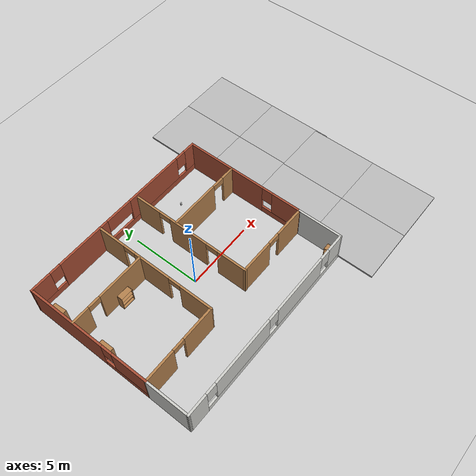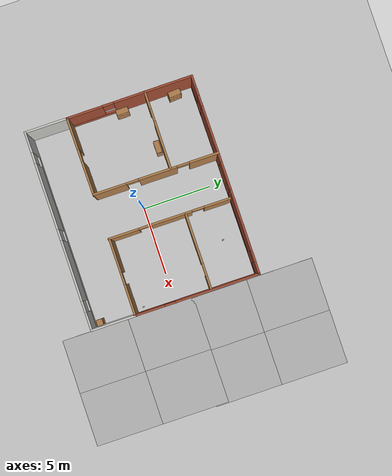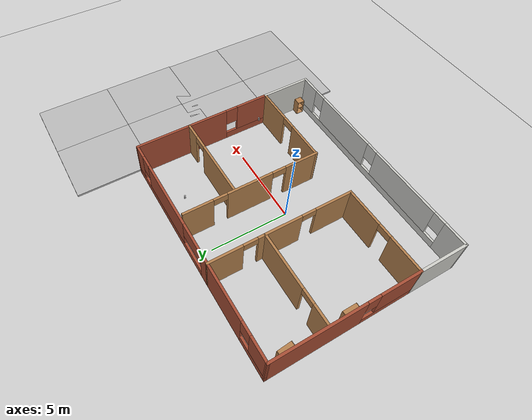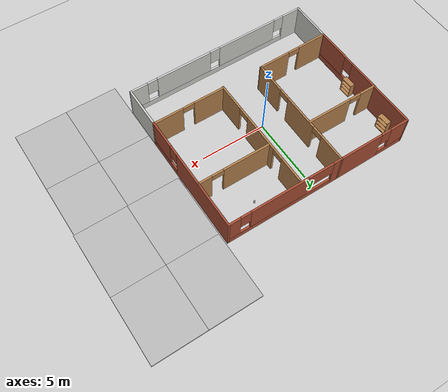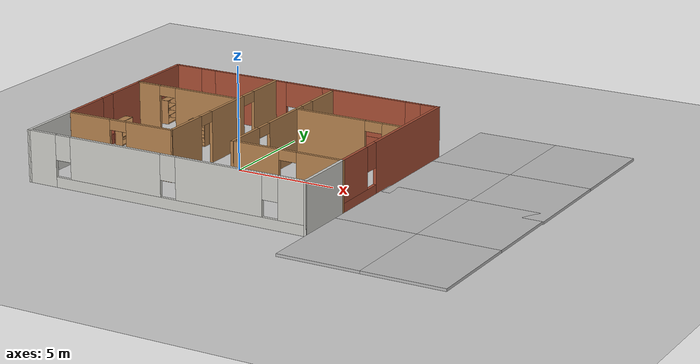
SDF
<sdf version="1.7">
 <world name="default">
  <light name="sun" type="directional">
   <pose>0 0 10 0 -0 0</pose>
   <diffuse>0.8 0.8 0.8 1</diffuse>
   <specular>0.2 0.2 0.2 1</specular>
   <attenuation>
    <range>1000</range>
    <constant>0.9</constant>
    <linear>0.01</linear>
    <quadratic>0.001</quadratic>
   </attenuation>
   <direction>-0.5 0.1 -0.9</direction>
   <spot><inner_angle>0</inner_angle><outer_angle>0</outer_angle><falloff>0</falloff></spot>
  </light>
  <model name="ground_plane">
   <static>1</static>
   <link name="link">
    <collision name="collision">
     <geometry><plane><normal>0 0 1</normal><size>100 100</size></plane></geometry>
     <surface>
      <contact><collide_bitmask>65535</collide_bitmask></contact>
      <friction><ode><mu>100</mu><mu2>50</mu2></ode></friction>
     </surface>
    </collision>
    <visual name="visual">
     <cast_shadows>0</cast_shadows>
     <geometry><plane><normal>0 0 1</normal><size>100 100</size></plane></geometry>
     <material>
      <script><uri>file://media/materials/scripts/gazebo.material</uri><name>Gazebo/Grey</name></script>
     </material>
    </visual>
   </link>
  </model>
  <gravity>0 0 -9.8</gravity>
  <magnetic_field>6e-06 2.3e-05 -4.2e-05</magnetic_field>
  <atmosphere type="adiabatic"/>
  <physics type="ode">
   <max_step_size>0.001</max_step_size>
   <real_time_factor>1</real_time_factor>
   <real_time_update_rate>1000</real_time_update_rate>
  </physics>
  <scene><ambient>0.4 0.4 0.4 1</ambient><background>0.7 0.7 0.7 1</background><shadows>1</shadows></scene>
  <audio><device>default</device></audio>
  <spherical_coordinates>
   <surface_model>EARTH_WGS84</surface_model>
   <latitude_deg>0</latitude_deg>
   <longitude_deg>0</longitude_deg>
   <elevation>0</elevation>
   <heading_deg>0</heading_deg>
  </spherical_coordinates>
  <model name="my_house">
   <pose>-0.15123 0.059453 0 0 -0 0</pose>
   <link name="Wall_0">
    <pose>-7.22486 1.52138 0 0 -0 -1.56493</pose>
    <visual name="Wall_0_Visual_0">
     <pose>-1.72955 0 1.25 0 -0 0</pose>
     <geometry><box><size>5.82578 0.15 2.5</size></box></geometry>
     <material>
      <script><uri>file://media/materials/scripts/gazebo.material</uri><name>Gazebo/Bricks</name></script>
      <ambient>1 1 1 1</ambient>
     </material>
     <meta><layer>0</layer></meta>
    </visual>
    <collision name="Wall_0_Collision_0">
     <geometry><box><size>5.82578 0.15 2.5</size></box></geometry>
     <pose>-1.72955 0 1.25 0 -0 0</pose>
    </collision>
    <visual name="Wall_0_Visual_1">
     <pose>2.91289 0 0.25 0 -0 0</pose>
     <geometry><box><size>3.45909 0.15 0.5</size></box></geometry>
     <material>
      <script><uri>file://media/materials/scripts/gazebo.material</uri><name>Gazebo/Bricks</name></script>
      <ambient>1 1 1 1</ambient>
     </material>
     <meta><layer>0</layer></meta>
    </visual>
    <collision name="Wall_0_Collision_1">
     <geometry><box><size>3.45909 0.15 0.5</size></box></geometry>
     <pose>2.91289 0 0.25 0 -0 0</pose>
    </collision>
    <visual name="Wall_0_Visual_2">
     <pose>3.31289 0 1.5 0 -0 0</pose>
     <geometry><box><size>2.65909 0.15 2</size></box></geometry>
     <material>
      <script><uri>file://media/materials/scripts/gazebo.material</uri><name>Gazebo/Bricks</name></script>
      <ambient>1 1 1 1</ambient>
     </material>
     <meta><layer>0</layer></meta>
    </visual>
    <collision name="Wall_0_Collision_2">
     <geometry><box><size>2.65909 0.15 2</size></box></geometry>
     <pose>3.31289 0 1.5 0 -0 0</pose>
    </collision>
    <visual name="Wall_0_Visual_3">
     <pose>1.58335 0 1.9 0 -0 0</pose>
     <geometry><box><size>0.8 0.15 1.2</size></box></geometry>
     <material>
      <script><uri>file://media/materials/scripts/gazebo.material</uri><name>Gazebo/Bricks</name></script>
      <ambient>1 1 1 1</ambient>
     </material>
     <meta><layer>0</layer></meta>
    </visual>
    <collision name="Wall_0_Collision_3">
     <geometry><box><size>0.8 0.15 1.2</size></box></geometry>
     <pose>1.58335 0 1.9 0 -0 0</pose>
    </collision>
   </link>
   <link name="Wall_1">
    <pose>-4.39808 -3.01539 0 0 -0 0.010925</pose>
    <visual name="Wall_1_Visual_0">
     <pose>-1.70484 0 1.25 0 -0 0</pose>
     <geometry><box><size>2.34033 0.15 2.5</size></box></geometry>
     <material>
      <script><uri>file://media/materials/scripts/gazebo.material</uri><name>Gazebo/Wood</name></script>
      <ambient>1 1 1 1</ambient>
     </material>
     <meta><layer>0</layer></meta>
    </visual>
    <collision name="Wall_1_Collision_0">
     <geometry><box><size>2.34033 0.15 2.5</size></box></geometry>
     <pose>-1.70484 0 1.25 0 -0 0</pose>
    </collision>
    <visual name="Wall_1_Visual_1">
     <pose>1.62016 0 1.25 0 -0 0</pose>
     <geometry><box><size>2.50967 0.15 2.5</size></box></geometry>
     <material>
      <script><uri>file://media/materials/scripts/gazebo.material</uri><name>Gazebo/Wood</name></script>
      <ambient>1 1 1 1</ambient>
     </material>
     <meta><layer>0</layer></meta>
    </visual>
    <collision name="Wall_1_Collision_1">
     <geometry><box><size>2.50967 0.15 2.5</size></box></geometry>
     <pose>1.62016 0 1.25 0 -0 0</pose>
    </collision>
    <visual name="Wall_1_Visual_2">
     <pose>-0.084673 0 2.25 0 -0 0</pose>
     <geometry><box><size>0.9 0.15 0.5</size></box></geometry>
     <material>
      <script><uri>file://media/materials/scripts/gazebo.material</uri><name>Gazebo/Wood</name></script>
      <ambient>1 1 1 1</ambient>
     </material>
     <meta><layer>0</layer></meta>
    </visual>
    <collision name="Wall_1_Collision_2">
     <geometry><box><size>0.9 0.15 0.5</size></box></geometry>
     <pose>-0.084673 0 2.25 0 -0 0</pose>
    </collision>
   </link>
   <link name="Wall_10">
    <pose>1.65192 1.45813 0 0 -0 1.5708</pose>
    <visual name="Wall_10_Visual_0">
     <pose>-3.3626 0 1.25 0 -0 0</pose>
     <geometry><box><size>2.23899 0.15 2.5</size></box></geometry>
     <material>
      <script><uri>file://media/materials/scripts/gazebo.material</uri><name>Gazebo/Wood</name></script>
      <ambient>1 1 1 1</ambient>
     </material>
     <meta><layer>0</layer></meta>
    </visual>
    <collision name="Wall_10_Collision_0">
     <geometry><box><size>2.23899 0.15 2.5</size></box></geometry>
     <pose>-3.3626 0 1.25 0 -0 0</pose>
    </collision>
    <visual name="Wall_10_Visual_1">
     <pose>0.150715 0 1.25 0 -0 0</pose>
     <geometry><box><size>2.98764 0.15 2.5</size></box></geometry>
     <material>
      <script><uri>file://media/materials/scripts/gazebo.material</uri><name>Gazebo/Wood</name></script>
      <ambient>1 1 1 1</ambient>
     </material>
     <meta><layer>0</layer></meta>
    </visual>
    <collision name="Wall_10_Collision_1">
     <geometry><box><size>2.98764 0.15 2.5</size></box></geometry>
     <pose>0.150715 0 1.25 0 -0 0</pose>
    </collision>
    <visual name="Wall_10_Visual_2">
     <pose>3.51331 0 1.25 0 -0 0</pose>
     <geometry><box><size>1.93756 0.15 2.5</size></box></geometry>
     <material>
      <script><uri>file://media/materials/scripts/gazebo.material</uri><name>Gazebo/Wood</name></script>
      <ambient>1 1 1 1</ambient>
     </material>
     <meta><layer>0</layer></meta>
    </visual>
    <collision name="Wall_10_Collision_2">
     <geometry><box><size>1.93756 0.15 2.5</size></box></geometry>
     <pose>3.51331 0 1.25 0 -0 0</pose>
    </collision>
    <visual name="Wall_10_Visual_3">
     <pose>-1.7931 0 2.25 0 -0 0</pose>
     <geometry><box><size>0.9 0.15 0.5</size></box></geometry>
     <material>
      <script><uri>file://media/materials/scripts/gazebo.material</uri><name>Gazebo/Wood</name></script>
      <ambient>1 1 1 1</ambient>
     </material>
     <meta><layer>0</layer></meta>
    </visual>
    <collision name="Wall_10_Collision_3">
     <geometry><box><size>0.9 0.15 0.5</size></box></geometry>
     <pose>-1.7931 0 2.25 0 -0 0</pose>
    </collision>
    <visual name="Wall_10_Visual_4">
     <pose>2.09453 0 2.25 0 -0 0</pose>
     <geometry><box><size>0.9 0.15 0.5</size></box></geometry>
     <material>
      <script><uri>file://media/materials/scripts/gazebo.material</uri><name>Gazebo/Wood</name></script>
      <ambient>1 1 1 1</ambient>
     </material>
     <meta><layer>0</layer></meta>
    </visual>
    <collision name="Wall_10_Collision_4">
     <geometry><box><size>0.9 0.15 0.5</size></box></geometry>
     <pose>2.09453 0 2.25 0 -0 0</pose>
    </collision>
   </link>
   <link name="Wall_12">
    <pose>4.47598 2.62996 0 0 -0 0</pose>
    <visual name="Wall_12_Visual_0">
     <pose>-0.981147 0 1.25 0 -0 0</pose>
     <geometry><box><size>3.66863 0.15 2.5</size></box></geometry>
     <material>
      <script><uri>file://media/materials/scripts/gazebo.material</uri><name>Gazebo/Wood</name></script>
      <ambient>1 1 1 1</ambient>
     </material>
     <meta><layer>0</layer></meta>
    </visual>
    <collision name="Wall_12_Collision_0">
     <geometry><box><size>3.66863 0.15 2.5</size></box></geometry>
     <pose>-0.981147 0 1.25 0 -0 0</pose>
    </collision>
    <visual name="Wall_12_Visual_1">
     <pose>2.28432 0 1.25 0 -0 0</pose>
     <geometry><box><size>1.06229 0.15 2.5</size></box></geometry>
     <material>
      <script><uri>file://media/materials/scripts/gazebo.material</uri><name>Gazebo/Wood</name></script>
      <ambient>1 1 1 1</ambient>
     </material>
     <meta><layer>0</layer></meta>
    </visual>
    <collision name="Wall_12_Collision_1">
     <geometry><box><size>1.06229 0.15 2.5</size></box></geometry>
     <pose>2.28432 0 1.25 0 -0 0</pose>
    </collision>
    <visual name="Wall_12_Visual_2">
     <pose>1.30317 0 2.25 0 -0 0</pose>
     <geometry><box><size>0.9 0.15 0.5</size></box></geometry>
     <material>
      <script><uri>file://media/materials/scripts/gazebo.material</uri><name>Gazebo/Wood</name></script>
      <ambient>1 1 1 1</ambient>
     </material>
     <meta><layer>0</layer></meta>
    </visual>
    <collision name="Wall_12_Collision_2">
     <geometry><box><size>0.9 0.15 0.5</size></box></geometry>
     <pose>1.30317 0 2.25 0 -0 0</pose>
    </collision>
   </link>
   <link name="Wall_14">
    <collision name="Wall_14_Collision">
     <geometry><box><size>3.25 0.15 2.5</size></box></geometry>
     <pose>0 0 1.25 0 -0 0</pose>
    </collision>
    <visual name="Wall_14_Visual">
     <pose>0 0 1.25 0 -0 0</pose>
     <geometry><box><size>3.25 0.15 2.5</size></box></geometry>
     <material>
      <script><uri>file://media/materials/scripts/gazebo.material</uri><name>Gazebo/CeilingTiled</name></script>
      <ambient>1 1 1 1</ambient>
     </material>
     <meta><layer>0</layer></meta>
    </visual>
    <pose>-7.19808 -4.56539 0 0 -0 -1.5708</pose>
   </link>
   <link name="Wall_15">
    <pose>0.026917 -6.1001 0 0 -0 0.002117</pose>
    <visual name="Wall_15_Visual_0">
     <pose>-6.52626 0 1.25 0 -0 0</pose>
     <geometry><box><size>1.54752 0.15 2.5</size></box></geometry>
     <material>
      <script><uri>file://media/materials/scripts/gazebo.material</uri><name>Gazebo/CeilingTiled</name></script>
      <ambient>1 1 1 1</ambient>
     </material>
     <meta><layer>0</layer></meta>
    </visual>
    <collision name="Wall_15_Collision_0">
     <geometry><box><size>1.54752 0.15 2.5</size></box></geometry>
     <pose>-6.52626 0 1.25 0 -0 0</pose>
    </collision>
    <visual name="Wall_15_Visual_1">
     <pose>0.77376 0 0.25 0 -0 0</pose>
     <geometry><box><size>13.0525 0.15 0.5</size></box></geometry>
     <material>
      <script><uri>file://media/materials/scripts/gazebo.material</uri><name>Gazebo/CeilingTiled</name></script>
      <ambient>1 1 1 1</ambient>
     </material>
     <meta><layer>0</layer></meta>
    </visual>
    <collision name="Wall_15_Collision_1">
     <geometry><box><size>13.0525 0.15 0.5</size></box></geometry>
     <pose>0.77376 0 0.25 0 -0 0</pose>
    </collision>
    <visual name="Wall_15_Visual_2">
     <pose>-2.53817 0 1.5 0 -0 0</pose>
     <geometry><box><size>4.82865 0.15 2</size></box></geometry>
     <material>
      <script><uri>file://media/materials/scripts/gazebo.material</uri><name>Gazebo/CeilingTiled</name></script>
      <ambient>1 1 1 1</ambient>
     </material>
     <meta><layer>0</layer></meta>
    </visual>
    <collision name="Wall_15_Collision_2">
     <geometry><box><size>4.82865 0.15 2</size></box></geometry>
     <pose>-2.53817 0 1.5 0 -0 0</pose>
    </collision>
    <visual name="Wall_15_Visual_3">
     <pose>2.89168 0 1.5 0 -0 0</pose>
     <geometry><box><size>4.43105 0.15 2</size></box></geometry>
     <material>
      <script><uri>file://media/materials/scripts/gazebo.material</uri><name>Gazebo/CeilingTiled</name></script>
      <ambient>1 1 1 1</ambient>
     </material>
     <meta><layer>0</layer></meta>
    </visual>
    <collision name="Wall_15_Collision_3">
     <geometry><box><size>4.43105 0.15 2</size></box></geometry>
     <pose>2.89168 0 1.5 0 -0 0</pose>
    </collision>
    <visual name="Wall_15_Visual_4">
     <pose>6.60361 0 1.5 0 -0 0</pose>
     <geometry><box><size>1.39281 0.15 2</size></box></geometry>
     <material>
      <script><uri>file://media/materials/scripts/gazebo.material</uri><name>Gazebo/CeilingTiled</name></script>
      <ambient>1 1 1 1</ambient>
     </material>
     <meta><layer>0</layer></meta>
    </visual>
    <collision name="Wall_15_Collision_4">
     <geometry><box><size>1.39281 0.15 2</size></box></geometry>
     <pose>6.60361 0 1.5 0 -0 0</pose>
    </collision>
    <visual name="Wall_15_Visual_5">
     <pose>-5.3525 0 1.9 0 -0 0</pose>
     <geometry><box><size>0.8 0.15 1.2</size></box></geometry>
     <material>
      <script><uri>file://media/materials/scripts/gazebo.material</uri><name>Gazebo/CeilingTiled</name></script>
      <ambient>1 1 1 1</ambient>
     </material>
     <meta><layer>0</layer></meta>
    </visual>
    <collision name="Wall_15_Collision_5">
     <geometry><box><size>0.8 0.15 1.2</size></box></geometry>
     <pose>-5.3525 0 1.9 0 -0 0</pose>
    </collision>
    <visual name="Wall_15_Visual_6">
     <pose>0.276159 0 1.9 0 -0 0</pose>
     <geometry><box><size>0.8 0.15 1.2</size></box></geometry>
     <material>
      <script><uri>file://media/materials/scripts/gazebo.material</uri><name>Gazebo/CeilingTiled</name></script>
      <ambient>1 1 1 1</ambient>
     </material>
     <meta><layer>0</layer></meta>
    </visual>
    <collision name="Wall_15_Collision_6">
     <geometry><box><size>0.8 0.15 1.2</size></box></geometry>
     <pose>0.276159 0 1.9 0 -0 0</pose>
    </collision>
    <visual name="Wall_15_Visual_7">
     <pose>5.50721 0 1.9 0 -0 0</pose>
     <geometry><box><size>0.8 0.15 1.2</size></box></geometry>
     <material>
      <script><uri>file://media/materials/scripts/gazebo.material</uri><name>Gazebo/CeilingTiled</name></script>
      <ambient>1 1 1 1</ambient>
     </material>
     <meta><layer>0</layer></meta>
    </visual>
    <collision name="Wall_15_Collision_7">
     <geometry><box><size>0.8 0.15 1.2</size></box></geometry>
     <pose>5.50721 0 1.9 0 -0 0</pose>
    </collision>
   </link>
   <link name="Wall_16">
    <collision name="Wall_16_Collision">
     <geometry><box><size>3.28602 0.15 2.5</size></box></geometry>
     <pose>0 0 1.25 0 -0 0</pose>
    </collision>
    <visual name="Wall_16_Visual">
     <pose>0 0 1.25 0 -0 0</pose>
     <geometry><box><size>3.28602 0.15 2.5</size></box></geometry>
     <material>
      <script><uri>file://media/materials/scripts/gazebo.material</uri><name>Gazebo/CeilingTiled</name></script>
      <ambient>1 1 1 1</ambient>
     </material>
     <meta><layer>0</layer></meta>
    </visual>
    <pose>7.25192 -4.51687 0 0 -0 1.5708</pose>
   </link>
   <link name="Wall_2">
    <pose>-1.59808 1.5652 0 0 -0 1.5708</pose>
    <visual name="Wall_2_Visual_0">
     <pose>-3.39449 0 1.25 0 -0 0</pose>
     <geometry><box><size>2.46101 0.15 2.5</size></box></geometry>
     <material>
      <script><uri>file://media/materials/scripts/gazebo.material</uri><name>Gazebo/Wood</name></script>
      <ambient>1 1 1 1</ambient>
     </material>
     <meta><layer>0</layer></meta>
    </visual>
    <collision name="Wall_2_Collision_0">
     <geometry><box><size>2.46101 0.15 2.5</size></box></geometry>
     <pose>-3.39449 0 1.25 0 -0 0</pose>
    </collision>
    <visual name="Wall_2_Visual_1">
     <pose>0.136462 0 1.25 0 -0 0</pose>
     <geometry><box><size>2.8009 0.15 2.5</size></box></geometry>
     <material>
      <script><uri>file://media/materials/scripts/gazebo.material</uri><name>Gazebo/Wood</name></script>
      <ambient>1 1 1 1</ambient>
     </material>
     <meta><layer>0</layer></meta>
    </visual>
    <collision name="Wall_2_Collision_1">
     <geometry><box><size>2.8009 0.15 2.5</size></box></geometry>
     <pose>0.136462 0 1.25 0 -0 0</pose>
    </collision>
    <visual name="Wall_2_Visual_2">
     <pose>3.53096 0 1.25 0 -0 0</pose>
     <geometry><box><size>2.18809 0.15 2.5</size></box></geometry>
     <material>
      <script><uri>file://media/materials/scripts/gazebo.material</uri><name>Gazebo/Wood</name></script>
      <ambient>1 1 1 1</ambient>
     </material>
     <meta><layer>0</layer></meta>
    </visual>
    <collision name="Wall_2_Collision_2">
     <geometry><box><size>2.18809 0.15 2.5</size></box></geometry>
     <pose>3.53096 0 1.25 0 -0 0</pose>
    </collision>
    <visual name="Wall_2_Visual_3">
     <pose>-1.71399 0 2.25 0 -0 0</pose>
     <geometry><box><size>0.9 0.15 0.5</size></box></geometry>
     <material>
      <script><uri>file://media/materials/scripts/gazebo.material</uri><name>Gazebo/Wood</name></script>
      <ambient>1 1 1 1</ambient>
     </material>
     <meta><layer>0</layer></meta>
    </visual>
    <collision name="Wall_2_Collision_3">
     <geometry><box><size>0.9 0.15 0.5</size></box></geometry>
     <pose>-1.71399 0 2.25 0 -0 0</pose>
    </collision>
    <visual name="Wall_2_Visual_4">
     <pose>1.98691 0 2.25 0 -0 0</pose>
     <geometry><box><size>0.9 0.15 0.5</size></box></geometry>
     <material>
      <script><uri>file://media/materials/scripts/gazebo.material</uri><name>Gazebo/Wood</name></script>
      <ambient>1 1 1 1</ambient>
     </material>
     <meta><layer>0</layer></meta>
    </visual>
    <collision name="Wall_2_Collision_4">
     <geometry><box><size>0.9 0.15 0.5</size></box></geometry>
     <pose>1.98691 0 2.25 0 -0 0</pose>
    </collision>
   </link>
   <link name="Wall_3">
    <pose>-4.42486 6.10197 0 0 -0 -3.13691</pose>
    <visual name="Wall_3_Visual_0">
     <pose>-1.155 0 1.25 0 -0 0</pose>
     <geometry><box><size>3.49361 0.15 2.5</size></box></geometry>
     <material>
      <script><uri>file://media/materials/scripts/gazebo.material</uri><name>Gazebo/Bricks</name></script>
      <ambient>1 1 1 1</ambient>
     </material>
     <meta><layer>0</layer></meta>
    </visual>
    <collision name="Wall_3_Collision_0">
     <geometry><box><size>3.49361 0.15 2.5</size></box></geometry>
     <pose>-1.155 0 1.25 0 -0 0</pose>
    </collision>
    <visual name="Wall_3_Visual_1">
     <pose>1.74681 0 0.25 0 -0 0</pose>
     <geometry><box><size>2.31 0.15 0.5</size></box></geometry>
     <material>
      <script><uri>file://media/materials/scripts/gazebo.material</uri><name>Gazebo/Bricks</name></script>
      <ambient>1 1 1 1</ambient>
     </material>
     <meta><layer>0</layer></meta>
    </visual>
    <collision name="Wall_3_Collision_1">
     <geometry><box><size>2.31 0.15 0.5</size></box></geometry>
     <pose>1.74681 0 0.25 0 -0 0</pose>
    </collision>
    <visual name="Wall_3_Visual_2">
     <pose>2.14681 0 1.5 0 -0 0</pose>
     <geometry><box><size>1.51 0.15 2</size></box></geometry>
     <material>
      <script><uri>file://media/materials/scripts/gazebo.material</uri><name>Gazebo/Bricks</name></script>
      <ambient>1 1 1 1</ambient>
     </material>
     <meta><layer>0</layer></meta>
    </visual>
    <collision name="Wall_3_Collision_2">
     <geometry><box><size>1.51 0.15 2</size></box></geometry>
     <pose>2.14681 0 1.5 0 -0 0</pose>
    </collision>
    <visual name="Wall_3_Visual_3">
     <pose>0.991805 0 1.9 0 -0 0</pose>
     <geometry><box><size>0.8 0.15 1.2</size></box></geometry>
     <material>
      <script><uri>file://media/materials/scripts/gazebo.material</uri><name>Gazebo/Bricks</name></script>
      <ambient>1 1 1 1</ambient>
     </material>
     <meta><layer>0</layer></meta>
    </visual>
    <collision name="Wall_3_Collision_3">
     <geometry><box><size>0.8 0.15 1.2</size></box></geometry>
     <pose>0.991805 0 1.9 0 -0 0</pose>
    </collision>
   </link>
   <link name="Wall_5">
    <pose>-4.4182 2.647 0 0 -0 0</pose>
    <visual name="Wall_5_Visual_0">
     <pose>-2.22036 0 1.25 0 -0 0</pose>
     <geometry><box><size>1.30928 0.15 2.5</size></box></geometry>
     <material>
      <script><uri>file://media/materials/scripts/gazebo.material</uri><name>Gazebo/Wood</name></script>
      <ambient>1 1 1 1</ambient>
     </material>
     <meta><layer>0</layer></meta>
    </visual>
    <collision name="Wall_5_Collision_0">
     <geometry><box><size>1.30928 0.15 2.5</size></box></geometry>
     <pose>-2.22036 0 1.25 0 -0 0</pose>
    </collision>
    <visual name="Wall_5_Visual_1">
     <pose>1.10464 0 1.25 0 -0 0</pose>
     <geometry><box><size>3.54072 0.15 2.5</size></box></geometry>
     <material>
      <script><uri>file://media/materials/scripts/gazebo.material</uri><name>Gazebo/Wood</name></script>
      <ambient>1 1 1 1</ambient>
     </material>
     <meta><layer>0</layer></meta>
    </visual>
    <collision name="Wall_5_Collision_1">
     <geometry><box><size>3.54072 0.15 2.5</size></box></geometry>
     <pose>1.10464 0 1.25 0 -0 0</pose>
    </collision>
    <visual name="Wall_5_Visual_2">
     <pose>-1.11572 0 2.25 0 -0 0</pose>
     <geometry><box><size>0.9 0.15 0.5</size></box></geometry>
     <material>
      <script><uri>file://media/materials/scripts/gazebo.material</uri><name>Gazebo/Wood</name></script>
      <ambient>1 1 1 1</ambient>
     </material>
     <meta><layer>0</layer></meta>
    </visual>
    <collision name="Wall_5_Collision_2">
     <geometry><box><size>0.9 0.15 0.5</size></box></geometry>
     <pose>-1.11572 0 2.25 0 -0 0</pose>
    </collision>
   </link>
   <link name="Wall_7">
    <pose>2.82692 6.1152 0 0 -0 0</pose>
    <visual name="Wall_7_Visual_0">
     <pose>-4.1402 0 1.25 0 -0 0</pose>
     <geometry><box><size>0.719608 0.15 2.5</size></box></geometry>
     <material>
      <script><uri>file://media/materials/scripts/gazebo.material</uri><name>Gazebo/Bricks</name></script>
      <ambient>1 1 1 1</ambient>
     </material>
     <meta><layer>0</layer></meta>
    </visual>
    <collision name="Wall_7_Collision_0">
     <geometry><box><size>0.719608 0.15 2.5</size></box></geometry>
     <pose>-4.1402 0 1.25 0 -0 0</pose>
    </collision>
    <visual name="Wall_7_Visual_1">
     <pose>0.359804 0 0.25 0 -0 0</pose>
     <geometry><box><size>8.28039 0.15 0.5</size></box></geometry>
     <material>
      <script><uri>file://media/materials/scripts/gazebo.material</uri><name>Gazebo/Bricks</name></script>
      <ambient>1 1 1 1</ambient>
     </material>
     <meta><layer>0</layer></meta>
    </visual>
    <collision name="Wall_7_Collision_1">
     <geometry><box><size>8.28039 0.15 0.5</size></box></geometry>
     <pose>0.359804 0 0.25 0 -0 0</pose>
    </collision>
    <visual name="Wall_7_Visual_2">
     <pose>0.489272 0 1.5 0 -0 0</pose>
     <geometry><box><size>4.49211 0.15 2</size></box></geometry>
     <material>
      <script><uri>file://media/materials/scripts/gazebo.material</uri><name>Gazebo/Bricks</name></script>
      <ambient>1 1 1 1</ambient>
     </material>
     <meta><layer>0</layer></meta>
    </visual>
    <collision name="Wall_7_Collision_2">
     <geometry><box><size>4.49211 0.15 2</size></box></geometry>
     <pose>0.489272 0 1.5 0 -0 0</pose>
    </collision>
    <visual name="Wall_7_Visual_3">
     <pose>4.01766 0 1.5 0 -0 0</pose>
     <geometry><box><size>0.964674 0.15 2</size></box></geometry>
     <material>
      <script><uri>file://media/materials/scripts/gazebo.material</uri><name>Gazebo/Bricks</name></script>
      <ambient>1 1 1 1</ambient>
     </material>
     <meta><layer>0</layer></meta>
    </visual>
    <collision name="Wall_7_Collision_3">
     <geometry><box><size>0.964674 0.15 2</size></box></geometry>
     <pose>4.01766 0 1.5 0 -0 0</pose>
    </collision>
    <visual name="Wall_7_Visual_4">
     <pose>-2.76859 0 1.9 0 -0 0</pose>
     <geometry><box><size>2.02361 0.15 1.2</size></box></geometry>
     <material>
      <script><uri>file://media/materials/scripts/gazebo.material</uri><name>Gazebo/Bricks</name></script>
      <ambient>1 1 1 1</ambient>
     </material>
     <meta><layer>0</layer></meta>
    </visual>
    <collision name="Wall_7_Collision_4">
     <geometry><box><size>2.02361 0.15 1.2</size></box></geometry>
     <pose>-2.76859 0 1.9 0 -0 0</pose>
    </collision>
    <visual name="Wall_7_Visual_5">
     <pose>3.13533 0 1.9 0 -0 0</pose>
     <geometry><box><size>0.8 0.15 1.2</size></box></geometry>
     <material>
      <script><uri>file://media/materials/scripts/gazebo.material</uri><name>Gazebo/Bricks</name></script>
      <ambient>1 1 1 1</ambient>
     </material>
     <meta><layer>0</layer></meta>
    </visual>
    <collision name="Wall_7_Collision_5">
     <geometry><box><size>0.8 0.15 1.2</size></box></geometry>
     <pose>3.13533 0 1.9 0 -0 0</pose>
    </collision>
   </link>
   <link name="Wall_8">
    <pose>7.25192 1.58313 0 0 -0 -1.5708</pose>
    <visual name="Wall_8_Visual_0">
     <pose>-1.52793 0 1.25 0 -0 0</pose>
     <geometry><box><size>6.15832 0.15 2.5</size></box></geometry>
     <material>
      <script><uri>file://media/materials/scripts/gazebo.material</uri><name>Gazebo/Bricks</name></script>
      <ambient>1 1 1 1</ambient>
     </material>
     <meta><layer>0</layer></meta>
    </visual>
    <collision name="Wall_8_Collision_0">
     <geometry><box><size>6.15832 0.15 2.5</size></box></geometry>
     <pose>-1.52793 0 1.25 0 -0 0</pose>
    </collision>
    <visual name="Wall_8_Visual_1">
     <pose>3.07916 0 0.25 0 -0 0</pose>
     <geometry><box><size>3.05586 0.15 0.5</size></box></geometry>
     <material>
      <script><uri>file://media/materials/scripts/gazebo.material</uri><name>Gazebo/Bricks</name></script>
      <ambient>1 1 1 1</ambient>
     </material>
     <meta><layer>0</layer></meta>
    </visual>
    <collision name="Wall_8_Collision_1">
     <geometry><box><size>3.05586 0.15 0.5</size></box></geometry>
     <pose>3.07916 0 0.25 0 -0 0</pose>
    </collision>
    <visual name="Wall_8_Visual_2">
     <pose>3.47916 0 1.5 0 -0 0</pose>
     <geometry><box><size>2.25586 0.15 2</size></box></geometry>
     <material>
      <script><uri>file://media/materials/scripts/gazebo.material</uri><name>Gazebo/Bricks</name></script>
      <ambient>1 1 1 1</ambient>
     </material>
     <meta><layer>0</layer></meta>
    </visual>
    <collision name="Wall_8_Collision_2">
     <geometry><box><size>2.25586 0.15 2</size></box></geometry>
     <pose>3.47916 0 1.5 0 -0 0</pose>
    </collision>
    <visual name="Wall_8_Visual_3">
     <pose>1.95123 0 1.9 0 -0 0</pose>
     <geometry><box><size>0.8 0.15 1.2</size></box></geometry>
     <material>
      <script><uri>file://media/materials/scripts/gazebo.material</uri><name>Gazebo/Bricks</name></script>
      <ambient>1 1 1 1</ambient>
     </material>
     <meta><layer>0</layer></meta>
    </visual>
    <collision name="Wall_8_Collision_3">
     <geometry><box><size>0.8 0.15 1.2</size></box></geometry>
     <pose>1.95123 0 1.9 0 -0 0</pose>
    </collision>
   </link>
   <link name="Wall_9">
    <pose>4.45192 -2.91834 0 0 -0 3.14159</pose>
    <visual name="Wall_9_Visual_0">
     <pose>-1.69857 0 1.25 0 -0 0</pose>
     <geometry><box><size>2.35287 0.15 2.5</size></box></geometry>
     <material>
      <script><uri>file://media/materials/scripts/gazebo.material</uri><name>Gazebo/Wood</name></script>
      <ambient>1 1 1 1</ambient>
     </material>
     <meta><layer>0</layer></meta>
    </visual>
    <collision name="Wall_9_Collision_0">
     <geometry><box><size>2.35287 0.15 2.5</size></box></geometry>
     <pose>-1.69857 0 1.25 0 -0 0</pose>
    </collision>
    <visual name="Wall_9_Visual_1">
     <pose>1.62643 0 1.25 0 -0 0</pose>
     <geometry><box><size>2.49713 0.15 2.5</size></box></geometry>
     <material>
      <script><uri>file://media/materials/scripts/gazebo.material</uri><name>Gazebo/Wood</name></script>
      <ambient>1 1 1 1</ambient>
     </material>
     <meta><layer>0</layer></meta>
    </visual>
    <collision name="Wall_9_Collision_1">
     <geometry><box><size>2.49713 0.15 2.5</size></box></geometry>
     <pose>1.62643 0 1.25 0 -0 0</pose>
    </collision>
    <visual name="Wall_9_Visual_2">
     <pose>-0.072133 0 2.25 0 -0 0</pose>
     <geometry><box><size>0.9 0.15 0.5</size></box></geometry>
     <material>
      <script><uri>file://media/materials/scripts/gazebo.material</uri><name>Gazebo/Wood</name></script>
      <ambient>1 1 1 1</ambient>
     </material>
     <meta><layer>0</layer></meta>
    </visual>
    <collision name="Wall_9_Collision_2">
     <geometry><box><size>0.9 0.15 0.5</size></box></geometry>
     <pose>-0.072133 0 2.25 0 -0 0</pose>
    </collision>
   </link>
   <static>1</static>
  </model>
  <model name="bookshelf">
   <static>1</static>
   <link name="link">
    <inertial><mass>1</mass></inertial>
    <collision name="back">
     <pose>0 0.005 0.6 0 -0 0</pose>
     <geometry><box><size>0.9 0.01 1.2</size></box></geometry>
    </collision>
    <visual name="visual1">
     <pose>0 0.005 0.6 0 -0 0</pose>
     <geometry><box><size>0.9 0.01 1.2</size></box></geometry>
     <material>
      <script><uri>file://media/materials/scripts/gazebo.material</uri><name>Gazebo/Wood</name></script>
     </material>
    </visual>
    <collision name="left_side">
     <pose>0.45 -0.195 0.6 0 -0 0</pose>
     <geometry><box><size>0.02 0.4 1.2</size></box></geometry>
    </collision>
    <visual name="visual2">
     <pose>0.45 -0.195 0.6 0 -0 0</pose>
     <geometry><box><size>0.02 0.4 1.2</size></box></geometry>
     <material>
      <script><uri>file://media/materials/scripts/gazebo.material</uri><name>Gazebo/Wood</name></script>
     </material>
    </visual>
    <collision name="right_side">
     <pose>-0.45 -0.195 0.6 0 -0 0</pose>
     <geometry><box><size>0.02 0.4 1.2</size></box></geometry>
    </collision>
    <visual name="visual3">
     <pose>-0.45 -0.195 0.6 0 -0 0</pose>
     <geometry><box><size>0.02 0.4 1.2</size></box></geometry>
     <material>
      <script><uri>file://media/materials/scripts/gazebo.material</uri><name>Gazebo/Wood</name></script>
     </material>
    </visual>
    <collision name="bottom">
     <pose>0 -0.195 0.03 0 -0 0</pose>
     <geometry><box><size>0.88 0.4 0.06</size></box></geometry>
    </collision>
    <visual name="visual4">
     <pose>0 -0.195 0.03 0 -0 0</pose>
     <geometry><box><size>0.88 0.4 0.06</size></box></geometry>
     <material>
      <script><uri>file://media/materials/scripts/gazebo.material</uri><name>Gazebo/Wood</name></script>
     </material>
    </visual>
    <collision name="top">
     <pose>0 -0.195 1.19 0 -0 0</pose>
     <geometry><box><size>0.88 0.4 0.02</size></box></geometry>
    </collision>
    <visual name="visual5">
     <pose>0 -0.195 1.19 0 -0 0</pose>
     <geometry><box><size>0.88 0.4 0.02</size></box></geometry>
     <material>
      <script><uri>file://media/materials/scripts/gazebo.material</uri><name>Gazebo/Wood</name></script>
     </material>
    </visual>
    <collision name="low_shelf">
     <pose>0 -0.195 0.43 0 -0 0</pose>
     <geometry><box><size>0.88 0.4 0.02</size></box></geometry>
    </collision>
    <visual name="visual6">
     <pose>0 -0.195 0.43 0 -0 0</pose>
     <geometry><box><size>0.88 0.4 0.02</size></box></geometry>
     <material>
      <script><uri>file://media/materials/scripts/gazebo.material</uri><name>Gazebo/Wood</name></script>
     </material>
    </visual>
    <collision name="high_shelf">
     <pose>0 -0.195 0.8 0 -0 0</pose>
     <geometry><box><size>0.88 0.4 0.02</size></box></geometry>
    </collision>
    <visual name="visual7">
     <pose>0 -0.195 0.8 0 -0 0</pose>
     <geometry><box><size>0.88 0.4 0.02</size></box></geometry>
     <material>
      <script><uri>file://media/materials/scripts/gazebo.material</uri><name>Gazebo/Wood</name></script>
     </material>
    </visual>
   </link>
   <pose>-3.73951 2.54538 0 0 -0 0</pose>
  </model>
  <model name="bookshelf_0">
   <static>1</static>
   <link name="link">
    <inertial><mass>1</mass></inertial>
    <collision name="back">
     <pose>0 0.005 0.6 0 -0 0</pose>
     <geometry><box><size>0.9 0.01 1.2</size></box></geometry>
    </collision>
    <visual name="visual1">
     <pose>0 0.005 0.6 0 -0 0</pose>
     <geometry><box><size>0.9 0.01 1.2</size></box></geometry>
     <material>
      <script><uri>file://media/materials/scripts/gazebo.material</uri><name>Gazebo/Wood</name></script>
     </material>
    </visual>
    <collision name="left_side">
     <pose>0.45 -0.195 0.6 0 -0 0</pose>
     <geometry><box><size>0.02 0.4 1.2</size></box></geometry>
    </collision>
    <visual name="visual2">
     <pose>0.45 -0.195 0.6 0 -0 0</pose>
     <geometry><box><size>0.02 0.4 1.2</size></box></geometry>
     <material>
      <script><uri>file://media/materials/scripts/gazebo.material</uri><name>Gazebo/Wood</name></script>
     </material>
    </visual>
    <collision name="right_side">
     <pose>-0.45 -0.195 0.6 0 -0 0</pose>
     <geometry><box><size>0.02 0.4 1.2</size></box></geometry>
    </collision>
    <visual name="visual3">
     <pose>-0.45 -0.195 0.6 0 -0 0</pose>
     <geometry><box><size>0.02 0.4 1.2</size></box></geometry>
     <material>
      <script><uri>file://media/materials/scripts/gazebo.material</uri><name>Gazebo/Wood</name></script>
     </material>
    </visual>
    <collision name="bottom">
     <pose>0 -0.195 0.03 0 -0 0</pose>
     <geometry><box><size>0.88 0.4 0.06</size></box></geometry>
    </collision>
    <visual name="visual4">
     <pose>0 -0.195 0.03 0 -0 0</pose>
     <geometry><box><size>0.88 0.4 0.06</size></box></geometry>
     <material>
      <script><uri>file://media/materials/scripts/gazebo.material</uri><name>Gazebo/Wood</name></script>
     </material>
    </visual>
    <collision name="top">
     <pose>0 -0.195 1.19 0 -0 0</pose>
     <geometry><box><size>0.88 0.4 0.02</size></box></geometry>
    </collision>
    <visual name="visual5">
     <pose>0 -0.195 1.19 0 -0 0</pose>
     <geometry><box><size>0.88 0.4 0.02</size></box></geometry>
     <material>
      <script><uri>file://media/materials/scripts/gazebo.material</uri><name>Gazebo/Wood</name></script>
     </material>
    </visual>
    <collision name="low_shelf">
     <pose>0 -0.195 0.43 0 -0 0</pose>
     <geometry><box><size>0.88 0.4 0.02</size></box></geometry>
    </collision>
    <visual name="visual6">
     <pose>0 -0.195 0.43 0 -0 0</pose>
     <geometry><box><size>0.88 0.4 0.02</size></box></geometry>
     <material>
      <script><uri>file://media/materials/scripts/gazebo.material</uri><name>Gazebo/Wood</name></script>
     </material>
    </visual>
    <collision name="high_shelf">
     <pose>0 -0.195 0.8 0 -0 0</pose>
     <geometry><box><size>0.88 0.4 0.02</size></box></geometry>
    </collision>
    <visual name="visual7">
     <pose>0 -0.195 0.8 0 -0 0</pose>
     <geometry><box><size>0.88 0.4 0.02</size></box></geometry>
     <material>
      <script><uri>file://media/materials/scripts/gazebo.material</uri><name>Gazebo/Wood</name></script>
     </material>
    </visual>
   </link>
   <pose>-7.16459 0.769554 0 0 -0 1.586</pose>
  </model>
  <model name="beer">
   <link name="link">
    <pose>0 0 0.115 0 -0 0</pose>
    <inertial>
     <mass>0.39</mass>
     <inertia><ixx>0.00058</ixx><ixy>0</ixy><ixz>0</ixz><iyy>0.00058</iyy><iyz>0</iyz><izz>0.00019</izz></inertia>
    </inertial>
    <collision name="collision">
     <geometry><cylinder><radius>0.055</radius><length>0.23</length></cylinder></geometry>
    </collision>
    <visual name="visual">
     <geometry><cylinder><radius>0.055</radius><length>0.23</length></cylinder></geometry>
     <material>
      <script>
       <uri>model://beer/materials/scripts</uri>
       <uri>model://beer/materials/textures</uri>
       <name>Beer/Diffuse</name>
      </script>
     </material>
    </visual>
   </link>
   <pose>6.7374 -2.23829 0.774993 5e-05 0 0.010659</pose>
  </model>
  <model name="cabinet">
   <static>1</static>
   <link name="cabinet_bottom_plate">
    <inertial>
     <pose>0 0 -1 0 -0 0</pose>
     <inertia><ixx>2.05</ixx><ixy>0</ixy><ixz>0</ixz><iyy>2.05</iyy><iyz>0</iyz><izz>2.05</izz></inertia>
     <mass>25</mass>
    </inertial>
    <collision name="cabinet_bottom_plate_geom">
     <pose>0 0 0.01 0 -0 0</pose>
     <geometry><box><size>0.45 0.45 0.02</size></box></geometry>
    </collision>
    <visual name="cabinet_bottom_plate_geom_visual">
     <pose>0 0 0.01 0 -0 0</pose>
     <geometry><box><size>0.45 0.45 0.02</size></box></geometry>
     <material>
      <script><uri>file://media/materials/scripts/gazebo.material</uri><name>Gazebo/Wood</name></script>
     </material>
    </visual>
    <collision name="cabinet_bottom_plate_geom_cabinet_back_plate">
     <pose>0.235 0 0.51 0 -0 0</pose>
     <geometry><box><size>0.02 0.45 1.02</size></box></geometry>
    </collision>
    <visual name="cabinet_bottom_plate_geom_cabinet_back_plate_visual">
     <pose>0.235 0 0.51 0 -0 0</pose>
     <geometry><box><size>0.02 0.45 1.02</size></box></geometry>
     <material>
      <script><uri>file://media/materials/scripts/gazebo.material</uri><name>Gazebo/Wood</name></script>
     </material>
    </visual>
    <collision name="cabinet_bottom_plate_geom_cabinet_left_plate">
     <pose>0 0.235 0.51 0 -0 0</pose>
     <geometry><box><size>0.45 0.02 1.02</size></box></geometry>
    </collision>
    <visual name="cabinet_bottom_plate_geom_cabinet_left_plate_visual">
     <pose>0 0.235 0.51 0 -0 0</pose>
     <geometry><box><size>0.45 0.02 1.02</size></box></geometry>
     <material>
      <script><uri>file://media/materials/scripts/gazebo.material</uri><name>Gazebo/Wood</name></script>
     </material>
    </visual>
    <collision name="cabinet_bottom_plate_geom_cabinet_middle_plate">
     <pose>0 0 0.51 0 -0 0</pose>
     <geometry><box><size>0.45 0.45 0.02</size></box></geometry>
    </collision>
    <visual name="cabinet_bottom_plate_geom_cabinet_middle_plate_visual">
     <pose>0 0 0.51 0 -0 0</pose>
     <geometry><box><size>0.45 0.45 0.02</size></box></geometry>
     <material>
      <script><uri>file://media/materials/scripts/gazebo.material</uri><name>Gazebo/Wood</name></script>
     </material>
    </visual>
    <collision name="cabinet_bottom_plate_geom_cabinet_right_plate">
     <pose>0 -0.235 0.51 0 -0 0</pose>
     <geometry><box><size>0.45 0.02 1.02</size></box></geometry>
    </collision>
    <visual name="cabinet_bottom_plate_geom_cabinet_right_plate_visual">
     <pose>0 -0.235 0.51 0 -0 0</pose>
     <geometry><box><size>0.45 0.02 1.02</size></box></geometry>
     <material>
      <script><uri>file://media/materials/scripts/gazebo.material</uri><name>Gazebo/Wood</name></script>
     </material>
    </visual>
    <collision name="cabinet_bottom_plate_geom_cabinet_top_plate">
     <pose>0 0 1.01 0 -0 0</pose>
     <geometry><box><size>0.45 0.45 0.02</size></box></geometry>
    </collision>
    <visual name="cabinet_bottom_plate_geom_cabinet_top_plate_visual">
     <pose>0 0 1.01 0 -0 0</pose>
     <geometry><box><size>0.45 0.45 0.02</size></box></geometry>
     <material>
      <script><uri>file://media/materials/scripts/gazebo.material</uri><name>Gazebo/Wood</name></script>
     </material>
    </visual>
   </link>
   <pose>6.79214 -5.53945 0 0 -0 0</pose>
  </model>
  <model name="mud_box">
   <static>1</static>
   <link name="link">
    <collision name="collision"><geometry><box><size>8 10 0.2</size></box></geometry></collision>
    <visual name="visual_1">
     <pose>-2 2.5 0 0 -0 0</pose>
     <cast_shadows>0</cast_shadows>
     <geometry><box><size>4 5 0.2</size></box></geometry>
     <material>
      <script>
       <uri>model://mud_box/materials/scripts</uri>
       <uri>model://mud_box/materials/textures</uri>
       <name>vrc/mud</name>
      </script>
     </material>
    </visual>
    <visual name="visual_2">
     <pose>2 2.5 0 0 -0 0</pose>
     <cast_shadows>0</cast_shadows>
     <geometry><box><size>4 5 0.2</size></box></geometry>
     <material>
      <script>
       <uri>model://mud_box/materials/scripts</uri>
       <uri>model://mud_box/materials/textures</uri>
       <name>vrc/mud</name>
      </script>
     </material>
    </visual>
    <visual name="visual_3">
     <pose>2 -2.5 0 0 -0 0</pose>
     <cast_shadows>0</cast_shadows>
     <geometry><box><size>4 5 0.2</size></box></geometry>
     <material>
      <script>
       <uri>model://mud_box/materials/scripts</uri>
       <uri>model://mud_box/materials/textures</uri>
       <name>vrc/mud</name>
      </script>
     </material>
    </visual>
    <visual name="visual_4">
     <pose>-2 -2.5 0 0 -0 0</pose>
     <cast_shadows>0</cast_shadows>
     <geometry><box><size>4 5 0.2</size></box></geometry>
     <material>
      <script>
       <uri>model://mud_box/materials/scripts</uri>
       <uri>model://mud_box/materials/textures</uri>
       <name>vrc/mud</name>
      </script>
     </material>
    </visual>
   </link>
   <pose>11.2799 5.4013 0 0 -0 0</pose>
  </model>
  <model name="mud_box_0">
   <static>1</static>
   <link name="link">
    <collision name="collision"><geometry><box><size>8 10 0.2</size></box></geometry></collision>
    <visual name="visual_1">
     <pose>-2 2.5 0 0 -0 0</pose>
     <cast_shadows>0</cast_shadows>
     <geometry><box><size>4 5 0.2</size></box></geometry>
     <material>
      <script>
       <uri>model://mud_box/materials/scripts</uri>
       <uri>model://mud_box/materials/textures</uri>
       <name>vrc/mud</name>
      </script>
     </material>
    </visual>
    <visual name="visual_2">
     <pose>2 2.5 0 0 -0 0</pose>
     <cast_shadows>0</cast_shadows>
     <geometry><box><size>4 5 0.2</size></box></geometry>
     <material>
      <script>
       <uri>model://mud_box/materials/scripts</uri>
       <uri>model://mud_box/materials/textures</uri>
       <name>vrc/mud</name>
      </script>
     </material>
    </visual>
    <visual name="visual_3">
     <pose>2 -2.5 0 0 -0 0</pose>
     <cast_shadows>0</cast_shadows>
     <geometry><box><size>4 5 0.2</size></box></geometry>
     <material>
      <script>
       <uri>model://mud_box/materials/scripts</uri>
       <uri>model://mud_box/materials/textures</uri>
       <name>vrc/mud</name>
      </script>
     </material>
    </visual>
    <visual name="visual_4">
     <pose>-2 -2.5 0 0 -0 0</pose>
     <cast_shadows>0</cast_shadows>
     <geometry><box><size>4 5 0.2</size></box></geometry>
     <material>
      <script>
       <uri>model://mud_box/materials/scripts</uri>
       <uri>model://mud_box/materials/textures</uri>
       <name>vrc/mud</name>
      </script>
     </material>
    </visual>
   </link>
   <pose>11.2248 -3.66079 0 0 -0 0</pose>
  </model>
  <model name="bookshelf_1">
   <static>1</static>
   <link name="link">
    <inertial><mass>1</mass></inertial>
    <collision name="back">
     <pose>0 0.005 0.6 0 -0 0</pose>
     <geometry><box><size>0.9 0.01 1.2</size></box></geometry>
    </collision>
    <visual name="visual1">
     <pose>0 0.005 0.6 0 -0 0</pose>
     <geometry><box><size>0.9 0.01 1.2</size></box></geometry>
     <material>
      <script><uri>file://media/materials/scripts/gazebo.material</uri><name>Gazebo/Wood</name></script>
     </material>
    </visual>
    <collision name="left_side">
     <pose>0.45 -0.195 0.6 0 -0 0</pose>
     <geometry><box><size>0.02 0.4 1.2</size></box></geometry>
    </collision>
    <visual name="visual2">
     <pose>0.45 -0.195 0.6 0 -0 0</pose>
     <geometry><box><size>0.02 0.4 1.2</size></box></geometry>
     <material>
      <script><uri>file://media/materials/scripts/gazebo.material</uri><name>Gazebo/Wood</name></script>
     </material>
    </visual>
    <collision name="right_side">
     <pose>-0.45 -0.195 0.6 0 -0 0</pose>
     <geometry><box><size>0.02 0.4 1.2</size></box></geometry>
    </collision>
    <visual name="visual3">
     <pose>-0.45 -0.195 0.6 0 -0 0</pose>
     <geometry><box><size>0.02 0.4 1.2</size></box></geometry>
     <material>
      <script><uri>file://media/materials/scripts/gazebo.material</uri><name>Gazebo/Wood</name></script>
     </material>
    </visual>
    <collision name="bottom">
     <pose>0 -0.195 0.03 0 -0 0</pose>
     <geometry><box><size>0.88 0.4 0.06</size></box></geometry>
    </collision>
    <visual name="visual4">
     <pose>0 -0.195 0.03 0 -0 0</pose>
     <geometry><box><size>0.88 0.4 0.06</size></box></geometry>
     <material>
      <script><uri>file://media/materials/scripts/gazebo.material</uri><name>Gazebo/Wood</name></script>
     </material>
    </visual>
    <collision name="top">
     <pose>0 -0.195 1.19 0 -0 0</pose>
     <geometry><box><size>0.88 0.4 0.02</size></box></geometry>
    </collision>
    <visual name="visual5">
     <pose>0 -0.195 1.19 0 -0 0</pose>
     <geometry><box><size>0.88 0.4 0.02</size></box></geometry>
     <material>
      <script><uri>file://media/materials/scripts/gazebo.material</uri><name>Gazebo/Wood</name></script>
     </material>
    </visual>
    <collision name="low_shelf">
     <pose>0 -0.195 0.43 0 -0 0</pose>
     <geometry><box><size>0.88 0.4 0.02</size></box></geometry>
    </collision>
    <visual name="visual6">
     <pose>0 -0.195 0.43 0 -0 0</pose>
     <geometry><box><size>0.88 0.4 0.02</size></box></geometry>
     <material>
      <script><uri>file://media/materials/scripts/gazebo.material</uri><name>Gazebo/Wood</name></script>
     </material>
    </visual>
    <collision name="high_shelf">
     <pose>0 -0.195 0.8 0 -0 0</pose>
     <geometry><box><size>0.88 0.4 0.02</size></box></geometry>
    </collision>
    <visual name="visual7">
     <pose>0 -0.195 0.8 0 -0 0</pose>
     <geometry><box><size>0.88 0.4 0.02</size></box></geometry>
     <material>
      <script><uri>file://media/materials/scripts/gazebo.material</uri><name>Gazebo/Wood</name></script>
     </material>
    </visual>
   </link>
   <pose>-7.19433 4.69673 0 0 -0 1.64211</pose>
  </model>
  <model name="beer_0">
   <link name="link">
    <pose>0 0 0.115 0 -0 0</pose>
    <inertial>
     <mass>0.39</mass>
     <inertia><ixx>0.00058</ixx><ixy>0</ixy><ixz>0</ixz><iyy>0.00058</iyy><iyz>0</iyz><izz>0.00019</izz></inertia>
    </inertial>
    <collision name="collision">
     <geometry><cylinder><radius>0.055</radius><length>0.23</length></cylinder></geometry>
    </collision>
    <visual name="visual">
     <geometry><cylinder><radius>0.055</radius><length>0.23</length></cylinder></geometry>
     <material>
      <script>
       <uri>model://beer/materials/scripts</uri>
       <uri>model://beer/materials/textures</uri>
       <name>Beer/Diffuse</name>
      </script>
     </material>
    </visual>
   </link>
   <pose>3.99235 4.71646 9e-06 -0.000298 1.9e-05 -0.042998</pose>
  </model>
 </world>
</sdf>
